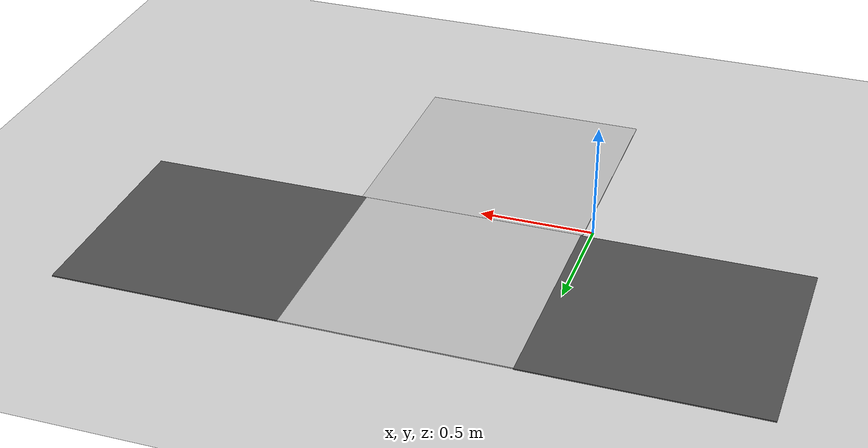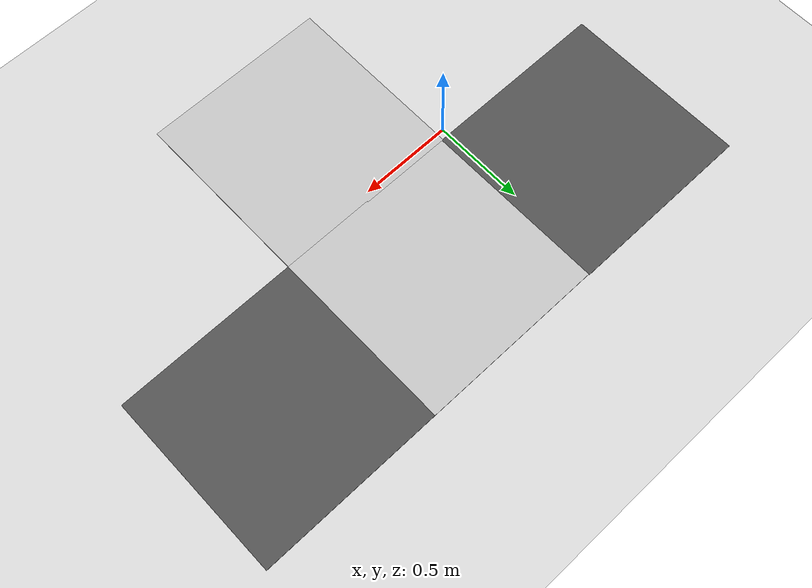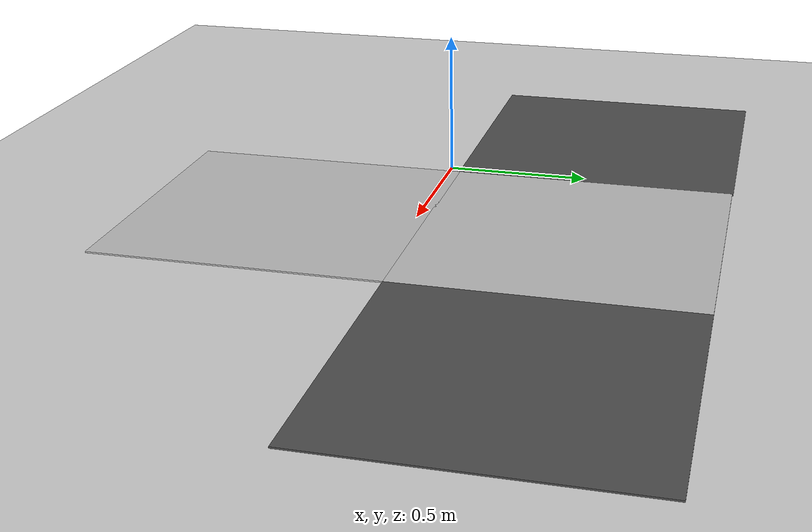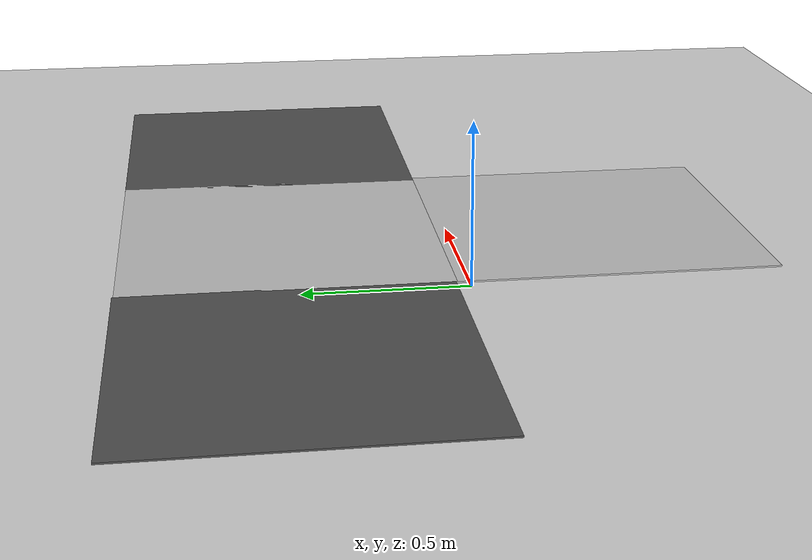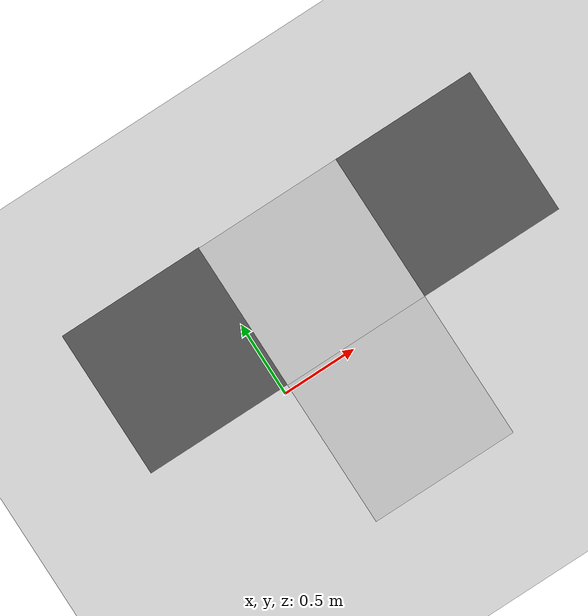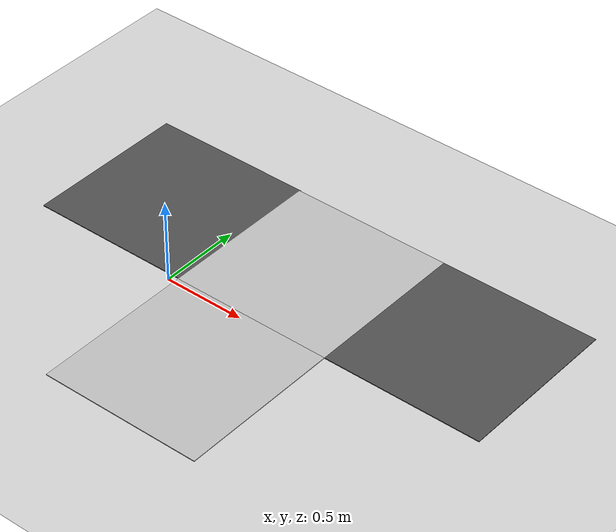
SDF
<sdf version="1.6">
 <world name="default">
  <light name="sun" type="directional">
   <pose>0 0 10 0 -0 0</pose>
   <diffuse>0.8 0.8 0.8 1</diffuse>
   <specular>0.2 0.2 0.2 1</specular>
   <attenuation>
    <range>1000</range>
    <constant>0.9</constant>
    <linear>0.01</linear>
    <quadratic>0.001</quadratic>
   </attenuation>
   <direction>-0.5 0.1 -0.9</direction>
  </light>
  <model name="ground_plane">
   <static>1</static>
   <link name="link">
    <collision name="collision">
     <geometry><plane><normal>0 0 1</normal><size>100 100</size></plane></geometry>
     <surface><friction><ode><mu>100</mu><mu2>50</mu2></ode></friction></surface>
    </collision>
    <visual name="visual">
     <cast_shadows>0</cast_shadows>
     <geometry><plane><normal>0 0 1</normal><size>100 100</size></plane></geometry>
     <material>
      <script><uri>file://media/materials/scripts/gazebo.material</uri><name>Gazebo/Grey</name></script>
     </material>
    </visual>
   </link>
  </model>
  <gravity>0 0 -9.8</gravity>
  <magnetic_field>6e-06 2.3e-05 -4.2e-05</magnetic_field>
  <atmosphere type="adiabatic"/>
  <physics name="default_physics" default="0" type="ode">
   <max_step_size>0.001</max_step_size>
   <real_time_factor>1</real_time_factor>
   <real_time_update_rate>1000</real_time_update_rate>
  </physics>
  <scene><ambient>0.4 0.4 0.4 1</ambient><background>0.7 0.7 0.7 1</background><shadows>1</shadows></scene>
  <spherical_coordinates>
   <surface_model>EARTH_WGS84</surface_model>
   <latitude_deg>0</latitude_deg>
   <longitude_deg>0</longitude_deg>
   <elevation>0</elevation>
   <heading_deg>0</heading_deg>
  </spherical_coordinates>
  <model name="road_inter_ccd">
   <static>1</static>
   <link name="link">
    <collision name="collision">
     <geometry><box><size>0.5 0.5 0.005</size></box></geometry>
     <surface><friction><ode><mu>100</mu><mu2>50</mu2></ode></friction></surface>
    </collision>
    <visual name="visual">
     <cast_shadows>0</cast_shadows>
     <geometry><box><size>1 1 0.005</size></box></geometry>
     <material>
      <script>
       <uri>model://road_inter_ccd/materials/scripts</uri>
       <uri>model://road_inter_ccd/materials/textures</uri>
       <name>vrc/inter</name>
      </script>
     </material>
    </visual>
   </link>
   <pose>0.537617 0.534776 0 0 -0 0</pose>
  </model>
  <model name="road_plane_ccd">
   <static>1</static>
   <link name="link">
    <collision name="collision">
     <geometry><box><size>0.5 0.5 0.005</size></box></geometry>
     <surface><friction><ode><mu>100</mu><mu2>50</mu2></ode></friction></surface>
    </collision>
    <visual name="visual">
     <cast_shadows>0</cast_shadows>
     <geometry><box><size>1 1 0.005</size></box></geometry>
     <material>
      <script>
       <uri>model://road_plane_ccd/materials/scripts</uri>
       <uri>model://road_plane_ccd/materials/textures</uri>
       <name>vrc/road</name>
      </script>
     </material>
    </visual>
   </link>
   <pose>-0.455409 0.538618 0 0 -0 0</pose>
  </model>
  <model name="road_plane_ccd_0">
   <static>1</static>
   <link name="link">
    <collision name="collision">
     <geometry><box><size>0.5 0.5 0.005</size></box></geometry>
     <surface><friction><ode><mu>100</mu><mu2>50</mu2></ode></friction></surface>
    </collision>
    <visual name="visual">
     <cast_shadows>0</cast_shadows>
     <geometry><box><size>1 1 0.005</size></box></geometry>
     <material>
      <script>
       <uri>model://road_plane_ccd/materials/scripts</uri>
       <uri>model://road_plane_ccd/materials/textures</uri>
       <name>vrc/road</name>
      </script>
     </material>
    </visual>
   </link>
   <pose>1.51668 0.534955 0 0 -0 0</pose>
  </model>
  <model name="road_inter_ccd_0">
   <static>1</static>
   <link name="link">
    <collision name="collision">
     <geometry><box><size>0.5 0.5 0.005</size></box></geometry>
     <surface><friction><ode><mu>100</mu><mu2>50</mu2></ode></friction></surface>
    </collision>
    <visual name="visual">
     <cast_shadows>0</cast_shadows>
     <geometry><box><size>1 1 0.005</size></box></geometry>
     <material>
      <script>
       <uri>model://road_inter_ccd/materials/scripts</uri>
       <uri>model://road_inter_ccd/materials/textures</uri>
       <name>vrc/inter</name>
      </script>
     </material>
    </visual>
   </link>
   <pose>0.537256 -0.458656 0 0 -0 0</pose>
  </model>
 </world>
</sdf>
